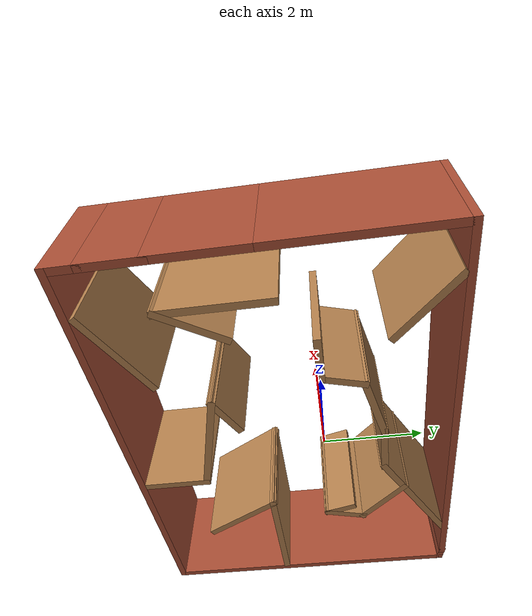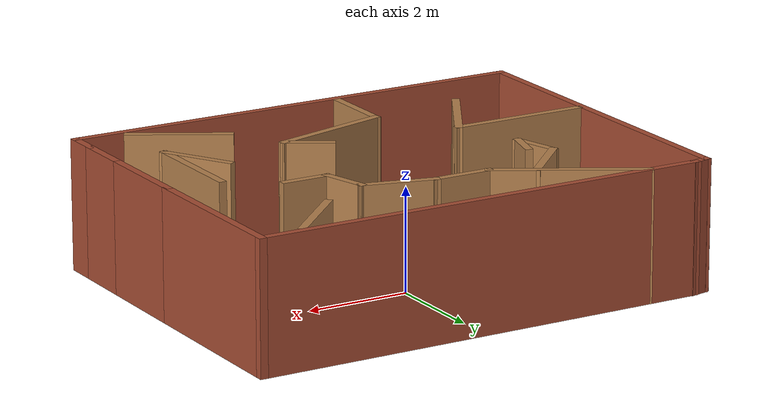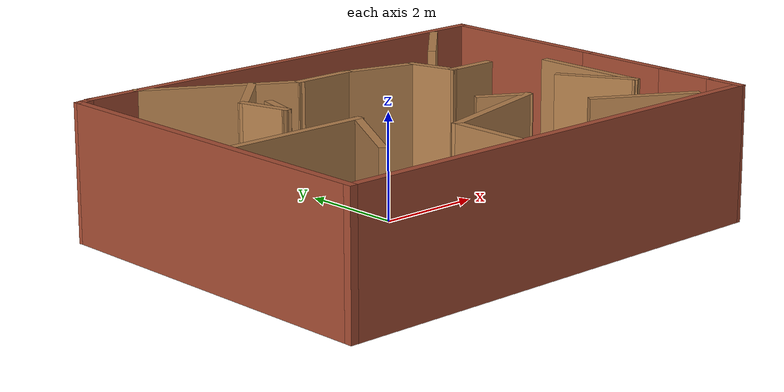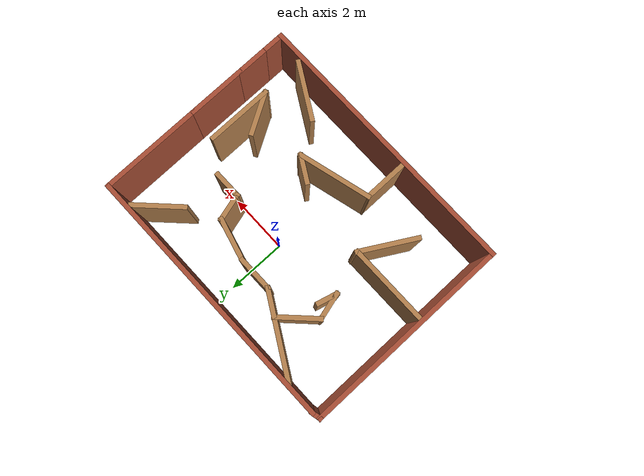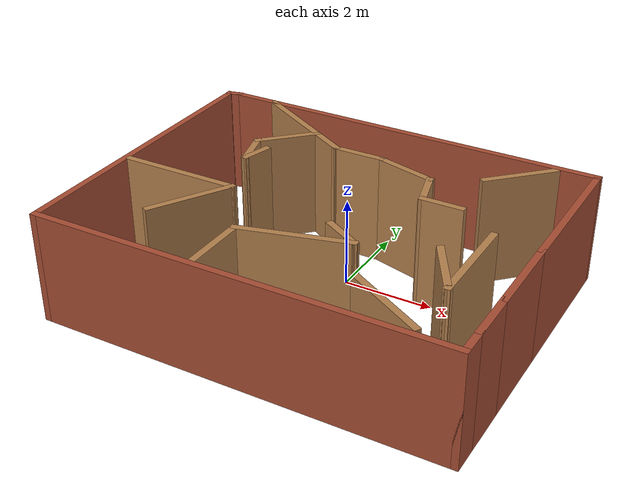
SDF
<?xml version='1.0'?>
<sdf version='1.6'>
  <model name='zlab_test1'>
    <pose frame=''>-0.116626 -0.761437 0 0 -0 0</pose>
    <link name='Wall_22'>
      <collision name='Wall_22_Collision'>
        <geometry>
          <box>
            <size>9.25 0.15 2.5</size>
          </box>
        </geometry>
        <pose frame=''>0 0 1.25 0 -0 0</pose>
      </collision>
      <visual name='Wall_22_Visual'>
        <pose frame=''>0 0 1.25 0 -0 0</pose>
        <geometry>
          <box>
            <size>9.25 0.15 2.5</size>
          </box>
        </geometry>
        <material>
          <script>
            <uri>file://media/materials/scripts/gazebo.material</uri>
            <name>Gazebo/Bricks</name>
          </script>
          <ambient>1 1 1 1</ambient>
        </material>
        <meta>
          <layer>0</layer>
        </meta>
      </visual>
      <pose frame=''>0.006626 -3.45856 0 0 -0 0</pose>
    </link>
    <link name='Wall_23'>
      <collision name='Wall_23_Collision'>
        <geometry>
          <box>
            <size>0.75 0.15 2.5</size>
          </box>
        </geometry>
        <pose frame=''>0 0 1.25 0 -0 0</pose>
      </collision>
      <visual name='Wall_23_Visual'>
        <pose frame=''>0 0 1.25 0 -0 0</pose>
        <geometry>
          <box>
            <size>0.75 0.15 2.5</size>
          </box>
        </geometry>
        <material>
          <script>
            <uri>file://media/materials/scripts/gazebo.material</uri>
            <name>Gazebo/Bricks</name>
          </script>
          <ambient>1 1 1 1</ambient>
        </material>
        <meta>
          <layer>0</layer>
        </meta>
      </visual>
      <pose frame=''>4.55663 -3.15856 0 0 -0 1.5708</pose>
    </link>
    <link name='Wall_24'>
      <collision name='Wall_24_Collision'>
        <geometry>
          <box>
            <size>1.25 0.15 2.5</size>
          </box>
        </geometry>
        <pose frame=''>0 0 1.25 0 -0 0</pose>
      </collision>
      <visual name='Wall_24_Visual'>
        <pose frame=''>0 0 1.25 0 -0 0</pose>
        <geometry>
          <box>
            <size>1.25 0.15 2.5</size>
          </box>
        </geometry>
        <material>
          <script>
            <uri>file://media/materials/scripts/gazebo.material</uri>
            <name>Gazebo/Bricks</name>
          </script>
          <ambient>1 1 1 1</ambient>
        </material>
        <meta>
          <layer>0</layer>
        </meta>
      </visual>
      <pose frame=''>4.55663 -2.30856 0 0 -0 1.5708</pose>
    </link>
    <link name='Wall_26'>
      <collision name='Wall_26_Collision'>
        <geometry>
          <box>
            <size>2 0.15 2.5</size>
          </box>
        </geometry>
        <pose frame=''>0 0 1.25 0 -0 0</pose>
      </collision>
      <visual name='Wall_26_Visual'>
        <pose frame=''>0 0 1.25 0 -0 0</pose>
        <geometry>
          <box>
            <size>2 0.15 2.5</size>
          </box>
        </geometry>
        <material>
          <script>
            <uri>file://media/materials/scripts/gazebo.material</uri>
            <name>Gazebo/Bricks</name>
          </script>
          <ambient>1 1 1 1</ambient>
        </material>
        <meta>
          <layer>0</layer>
        </meta>
      </visual>
      <pose frame=''>4.55663 -0.833563 0 0 -0 1.5708</pose>
    </link>
    <link name='Wall_28'>
      <collision name='Wall_28_Collision'>
        <geometry>
          <box>
            <size>3.5 0.15 2.5</size>
          </box>
        </geometry>
        <pose frame=''>0 0 1.25 0 -0 0</pose>
      </collision>
      <visual name='Wall_28_Visual'>
        <pose frame=''>0 0 1.25 0 -0 0</pose>
        <geometry>
          <box>
            <size>3.5 0.15 2.5</size>
          </box>
        </geometry>
        <material>
          <script>
            <uri>file://media/materials/scripts/gazebo.material</uri>
            <name>Gazebo/Bricks</name>
          </script>
          <ambient>1 1 1 1</ambient>
        </material>
        <meta>
          <layer>0</layer>
        </meta>
      </visual>
      <pose frame=''>4.55663 1.76644 0 0 -0 1.5708</pose>
    </link>
    <link name='Wall_29'>
      <collision name='Wall_29_Collision'>
        <geometry>
          <box>
            <size>9 0.15 2.5</size>
          </box>
        </geometry>
        <pose frame=''>0 0 1.25 0 -0 0</pose>
      </collision>
      <visual name='Wall_29_Visual'>
        <pose frame=''>0 0 1.25 0 -0 0</pose>
        <geometry>
          <box>
            <size>9 0.15 2.5</size>
          </box>
        </geometry>
        <material>
          <script>
            <uri>file://media/materials/scripts/gazebo.material</uri>
            <name>Gazebo/Bricks</name>
          </script>
          <ambient>1 1 1 1</ambient>
        </material>
        <meta>
          <layer>0</layer>
        </meta>
      </visual>
      <pose frame=''>0.131626 3.44144 0 0 -0 3.14159</pose>
    </link>
    <link name='Wall_31'>
      <collision name='Wall_31_Collision'>
        <geometry>
          <box>
            <size>7 0.15 2.5</size>
          </box>
        </geometry>
        <pose frame=''>0 0 1.25 0 -0 0</pose>
      </collision>
      <visual name='Wall_31_Visual'>
        <pose frame=''>0 0 1.25 0 -0 0</pose>
        <geometry>
          <box>
            <size>7 0.15 2.5</size>
          </box>
        </geometry>
        <material>
          <script>
            <uri>file://media/materials/scripts/gazebo.material</uri>
            <name>Gazebo/Bricks</name>
          </script>
          <ambient>1 1 1 1</ambient>
        </material>
        <meta>
          <layer>0</layer>
        </meta>
      </visual>
      <pose frame=''>-4.54337 -0.033563 0 0 -0 1.5708</pose>
    </link>
    <link name='Wall_32'>
      <collision name='Wall_32_Collision'>
        <geometry>
          <box>
            <size>0.15 0.15 2.5</size>
          </box>
        </geometry>
        <pose frame=''>0 0 1.25 0 -0 0</pose>
      </collision>
      <visual name='Wall_32_Visual'>
        <pose frame=''>0 0 1.25 0 -0 0</pose>
        <geometry>
          <box>
            <size>0.15 0.15 2.5</size>
          </box>
        </geometry>
        <material>
          <script>
            <uri>file://media/materials/scripts/gazebo.material</uri>
            <name>Gazebo/Bricks</name>
          </script>
          <ambient>1 1 1 1</ambient>
        </material>
        <meta>
          <layer>0</layer>
        </meta>
      </visual>
      <pose frame=''>-4.54337 3.39144 0 0 -0 0</pose>
    </link>
    <link name='Wall_33'>
      <collision name='Wall_33_Collision'>
        <geometry>
          <box>
            <size>0.404951 0.15 2.5</size>
          </box>
        </geometry>
        <pose frame=''>0 0 1.25 0 -0 0</pose>
      </collision>
      <visual name='Wall_33_Visual'>
        <pose frame=''>0 0 1.25 0 -0 0</pose>
        <geometry>
          <box>
            <size>0.404951 0.15 2.5</size>
          </box>
        </geometry>
        <material>
          <script>
            <uri>file://media/materials/scripts/gazebo.material</uri>
            <name>Gazebo/Bricks</name>
          </script>
          <ambient>1 1 1 1</ambient>
        </material>
        <meta>
          <layer>0</layer>
        </meta>
      </visual>
      <pose frame=''>-4.41837 3.41644 0 0 -0 0.197396</pose>
    </link>
    <link name='Wall_35'>
      <collision name='Wall_35_Collision'>
        <geometry>
          <box>
            <size>3 0.15 2.5</size>
          </box>
        </geometry>
        <pose frame=''>0 0 1.25 0 -0 0</pose>
      </collision>
      <visual name='Wall_35_Visual'>
        <pose frame=''>0 0 1.25 0 -0 0</pose>
        <geometry>
          <box>
            <size>3 0.15 2.5</size>
          </box>
        </geometry>
        <material>
          <script>
            <uri>file://media/materials/scripts/gazebo.material</uri>
            <name>Gazebo/Wood</name>
          </script>
          <ambient>1 1 1 1</ambient>
        </material>
        <meta>
          <layer>0</layer>
        </meta>
      </visual>
      <pose frame=''>-2.08129 2.71861 0 0 -0 -0.523599</pose>
    </link>
    <link name='Wall_36'>
      <collision name='Wall_36_Collision'>
        <geometry>
          <box>
            <size>1.25 0.15 2.5</size>
          </box>
        </geometry>
        <pose frame=''>0 0 1.25 0 -0 0</pose>
      </collision>
      <visual name='Wall_36_Visual'>
        <pose frame=''>0 0 1.25 0 -0 0</pose>
        <geometry>
          <box>
            <size>1.25 0.15 2.5</size>
          </box>
        </geometry>
        <material>
          <script>
            <uri>file://media/materials/scripts/gazebo.material</uri>
            <name>Gazebo/Wood</name>
          </script>
          <ambient>1 1 1 1</ambient>
        </material>
        <meta>
          <layer>0</layer>
        </meta>
      </visual>
      <pose frame=''>-0.297207 2.00611 0 0 -0 0</pose>
    </link>
    <link name='Wall_37'>
      <collision name='Wall_37_Collision'>
        <geometry>
          <box>
            <size>1.5 0.15 2.5</size>
          </box>
        </geometry>
        <pose frame=''>0 0 1.25 0 -0 0</pose>
      </collision>
      <visual name='Wall_37_Visual'>
        <pose frame=''>0 0 1.25 0 -0 0</pose>
        <geometry>
          <box>
            <size>1.5 0.15 2.5</size>
          </box>
        </geometry>
        <material>
          <script>
            <uri>file://media/materials/scripts/gazebo.material</uri>
            <name>Gazebo/Wood</name>
          </script>
          <ambient>1 1 1 1</ambient>
        </material>
        <meta>
          <layer>0</layer>
        </meta>
      </visual>
      <pose frame=''>0.904793 1.83141 0 0 -0 -0.261799</pose>
    </link>
    <link name='Wall_38'>
      <collision name='Wall_38_Collision'>
        <geometry>
          <box>
            <size>1 0.15 2.5</size>
          </box>
        </geometry>
        <pose frame=''>0 0 1.25 0 -0 0</pose>
      </collision>
      <visual name='Wall_38_Visual'>
        <pose frame=''>0 0 1.25 0 -0 0</pose>
        <geometry>
          <box>
            <size>1 0.15 2.5</size>
          </box>
        </geometry>
        <material>
          <script>
            <uri>file://media/materials/scripts/gazebo.material</uri>
            <name>Gazebo/Wood</name>
          </script>
          <ambient>1 1 1 1</ambient>
        </material>
        <meta>
          <layer>0</layer>
        </meta>
      </visual>
      <pose frame=''>1.66679 1.24619 0 0 -0 -1.309</pose>
    </link>
    <link name='Wall_39'>
      <collision name='Wall_39_Collision'>
        <geometry>
          <box>
            <size>1 0.15 2.5</size>
          </box>
        </geometry>
        <pose frame=''>0 0 1.25 0 -0 0</pose>
      </collision>
      <visual name='Wall_39_Visual'>
        <pose frame=''>0 0 1.25 0 -0 0</pose>
        <geometry>
          <box>
            <size>1 0.15 2.5</size>
          </box>
        </geometry>
        <material>
          <script>
            <uri>file://media/materials/scripts/gazebo.material</uri>
            <name>Gazebo/Wood</name>
          </script>
          <ambient>1 1 1 1</ambient>
        </material>
        <meta>
          <layer>0</layer>
        </meta>
      </visual>
      <pose frame=''>2.20179 0.835669 0 0 -0 0</pose>
    </link>
    <link name='Wall_41'>
      <collision name='Wall_41_Collision'>
        <geometry>
          <box>
            <size>1.5 0.15 2.5</size>
          </box>
        </geometry>
        <pose frame=''>0 0 1.25 0 -0 0</pose>
      </collision>
      <visual name='Wall_41_Visual'>
        <pose frame=''>0 0 1.25 0 -0 0</pose>
        <geometry>
          <box>
            <size>1.5 0.15 2.5</size>
          </box>
        </geometry>
        <material>
          <script>
            <uri>file://media/materials/scripts/gazebo.material</uri>
            <name>Gazebo/Wood</name>
          </script>
          <ambient>1 1 1 1</ambient>
        </material>
        <meta>
          <layer>0</layer>
        </meta>
      </visual>
      <pose frame=''>-2.06116 1.95688 0 0 -0 -2.35619</pose>
    </link>
    <link name='Wall_42'>
      <collision name='Wall_42_Collision'>
        <geometry>
          <box>
            <size>1 0.15 2.5</size>
          </box>
        </geometry>
        <pose frame=''>0 0 1.25 0 -0 0</pose>
      </collision>
      <visual name='Wall_42_Visual'>
        <pose frame=''>0 0 1.25 0 -0 0</pose>
        <geometry>
          <box>
            <size>1 0.15 2.5</size>
          </box>
        </geometry>
        <material>
          <script>
            <uri>file://media/materials/scripts/gazebo.material</uri>
            <name>Gazebo/Wood</name>
          </script>
          <ambient>1 1 1 1</ambient>
        </material>
        <meta>
          <layer>0</layer>
        </meta>
      </visual>
      <pose frame=''>-2.42846 1.06906 0 0 -0 -1.309</pose>
    </link>
    <link name='Wall_43'>
      <collision name='Wall_43_Collision'>
        <geometry>
          <box>
            <size>0.75 0.15 2.5</size>
          </box>
        </geometry>
        <pose frame=''>0 0 1.25 0 -0 0</pose>
      </collision>
      <visual name='Wall_43_Visual'>
        <pose frame=''>0 0 1.25 0 -0 0</pose>
        <geometry>
          <box>
            <size>0.75 0.15 2.5</size>
          </box>
        </geometry>
        <material>
          <script>
            <uri>file://media/materials/scripts/gazebo.material</uri>
            <name>Gazebo/Wood</name>
          </script>
          <ambient>1 1 1 1</ambient>
        </material>
        <meta>
          <layer>0</layer>
        </meta>
      </visual>
      <pose frame=''>-2.24082 0.948325 0 0 -0 1.309</pose>
    </link>
    <link name='Wall_45'>
      <collision name='Wall_45_Collision'>
        <geometry>
          <box>
            <size>1.5 0.15 2.5</size>
          </box>
        </geometry>
        <pose frame=''>0 0 1.25 0 -0 0</pose>
      </collision>
      <visual name='Wall_45_Visual'>
        <pose frame=''>0 0 1.25 0 -0 0</pose>
        <geometry>
          <box>
            <size>1.5 0.15 2.5</size>
          </box>
        </geometry>
        <material>
          <script>
            <uri>file://media/materials/scripts/gazebo.material</uri>
            <name>Gazebo/Wood</name>
          </script>
          <ambient>1 1 1 1</ambient>
        </material>
        <meta>
          <layer>0</layer>
        </meta>
      </visual>
      <pose frame=''>-0.866771 -2.64832 0 0 -0 -1.5708</pose>
    </link>
    <link name='Wall_47'>
      <collision name='Wall_47_Collision'>
        <geometry>
          <box>
            <size>2.5 0.15 2.5</size>
          </box>
        </geometry>
        <pose frame=''>0 0 1.25 0 -0 0</pose>
      </collision>
      <visual name='Wall_47_Visual'>
        <pose frame=''>0 0 1.25 0 -0 0</pose>
        <geometry>
          <box>
            <size>2.5 0.15 2.5</size>
          </box>
        </geometry>
        <material>
          <script>
            <uri>file://media/materials/scripts/gazebo.material</uri>
            <name>Gazebo/Wood</name>
          </script>
          <ambient>1 1 1 1</ambient>
        </material>
        <meta>
          <layer>0</layer>
        </meta>
      </visual>
      <pose frame=''>0.268192 -1.66921 0 0 -0 0.261799</pose>
    </link>
    <link name='Wall_48'>
      <collision name='Wall_48_Collision'>
        <geometry>
          <box>
            <size>1 0.15 2.5</size>
          </box>
        </geometry>
        <pose frame=''>0 0 1.25 0 -0 0</pose>
      </collision>
      <visual name='Wall_48_Visual'>
        <pose frame=''>0 0 1.25 0 -0 0</pose>
        <geometry>
          <box>
            <size>1 0.15 2.5</size>
          </box>
        </geometry>
        <material>
          <script>
            <uri>file://media/materials/scripts/gazebo.material</uri>
            <name>Gazebo/Wood</name>
          </script>
          <ambient>1 1 1 1</ambient>
        </material>
        <meta>
          <layer>0</layer>
        </meta>
      </visual>
      <pose frame=''>1.03509 -1.15259 0 0 -0 2.61799</pose>
    </link>
    <link name='Wall_50'>
      <collision name='Wall_50_Collision'>
        <geometry>
          <box>
            <size>2 0.15 2.5</size>
          </box>
        </geometry>
        <pose frame=''>0 0 1.25 0 -0 0</pose>
      </collision>
      <visual name='Wall_50_Visual'>
        <pose frame=''>0 0 1.25 0 -0 0</pose>
        <geometry>
          <box>
            <size>2 0.15 2.5</size>
          </box>
        </geometry>
        <material>
          <script>
            <uri>file://media/materials/scripts/gazebo.material</uri>
            <name>Gazebo/Wood</name>
          </script>
          <ambient>1 1 1 1</ambient>
        </material>
        <meta>
          <layer>0</layer>
        </meta>
      </visual>
      <pose frame=''>2.78518 -2.8206 0 0 -0 -0.523599</pose>
    </link>
    <link name='Wall_52'>
      <collision name='Wall_52_Collision'>
        <geometry>
          <box>
            <size>2.75 0.15 2.5</size>
          </box>
        </geometry>
        <pose frame=''>0 0 1.25 0 -0 0</pose>
      </collision>
      <visual name='Wall_52_Visual'>
        <pose frame=''>0 0 1.25 0 -0 0</pose>
        <geometry>
          <box>
            <size>2.75 0.15 2.5</size>
          </box>
        </geometry>
        <material>
          <script>
            <uri>file://media/materials/scripts/gazebo.material</uri>
            <name>Gazebo/Wood</name>
          </script>
          <ambient>1 1 1 1</ambient>
        </material>
        <meta>
          <layer>0</layer>
        </meta>
      </visual>
      <pose frame=''>-3.13474 -0.609093 0 0 -0 0</pose>
    </link>
    <link name='Wall_53'>
      <collision name='Wall_53_Collision'>
        <geometry>
          <box>
            <size>2 0.15 2.5</size>
          </box>
        </geometry>
        <pose frame=''>0 0 1.25 0 -0 0</pose>
      </collision>
      <visual name='Wall_53_Visual'>
        <pose frame=''>0 0 1.25 0 -0 0</pose>
        <geometry>
          <box>
            <size>2 0.15 2.5</size>
          </box>
        </geometry>
        <material>
          <script>
            <uri>file://media/materials/scripts/gazebo.material</uri>
            <name>Gazebo/Wood</name>
          </script>
          <ambient>1 1 1 1</ambient>
        </material>
        <meta>
          <layer>0</layer>
        </meta>
      </visual>
      <pose frame=''>-2.29724 -1.41017 0 0 -0 -2.0944</pose>
    </link>
    <link name='Wall_55'>
      <collision name='Wall_55_Collision'>
        <geometry>
          <box>
            <size>1.75 0.15 2.5</size>
          </box>
        </geometry>
        <pose frame=''>0 0 1.25 0 -0 0</pose>
      </collision>
      <visual name='Wall_55_Visual'>
        <pose frame=''>0 0 1.25 0 -0 0</pose>
        <geometry>
          <box>
            <size>1.75 0.15 2.5</size>
          </box>
        </geometry>
        <material>
          <script>
            <uri>file://media/materials/scripts/gazebo.material</uri>
            <name>Gazebo/Wood</name>
          </script>
          <ambient>1 1 1 1</ambient>
        </material>
        <meta>
          <layer>0</layer>
        </meta>
      </visual>
      <pose frame=''>3.11496 2.76049 0 0 -0 -2.35619</pose>
    </link>
    <link name='Wall_57'>
      <collision name='Wall_57_Collision'>
        <geometry>
          <box>
            <size>2.25 0.15 2.5</size>
          </box>
        </geometry>
        <pose frame=''>0 0 1.25 0 -0 0</pose>
      </collision>
      <visual name='Wall_57_Visual'>
        <pose frame=''>0 0 1.25 0 -0 0</pose>
        <geometry>
          <box>
            <size>2.25 0.15 2.5</size>
          </box>
        </geometry>
        <material>
          <script>
            <uri>file://media/materials/scripts/gazebo.material</uri>
            <name>Gazebo/Wood</name>
          </script>
          <ambient>1 1 1 1</ambient>
        </material>
        <meta>
          <layer>0</layer>
        </meta>
      </visual>
      <pose frame=''>3.55822 -0.85455 0 0 -0 -1.5708</pose>
    </link>
    <link name='Wall_58'>
      <collision name='Wall_58_Collision'>
        <geometry>
          <box>
            <size>1.5 0.15 2.5</size>
          </box>
        </geometry>
        <pose frame=''>0 0 1.25 0 -0 0</pose>
      </collision>
      <visual name='Wall_58_Visual'>
        <pose frame=''>0 0 1.25 0 -0 0</pose>
        <geometry>
          <box>
            <size>1.5 0.15 2.5</size>
          </box>
        </geometry>
        <material>
          <script>
            <uri>file://media/materials/scripts/gazebo.material</uri>
            <name>Gazebo/Wood</name>
          </script>
          <ambient>1 1 1 1</ambient>
        </material>
        <meta>
          <layer>0</layer>
        </meta>
      </visual>
      <pose frame=''>3.22072 -1.31998 0 0 -0 2.0944</pose>
    </link>
    <static>1</static>
  </model>
</sdf>
